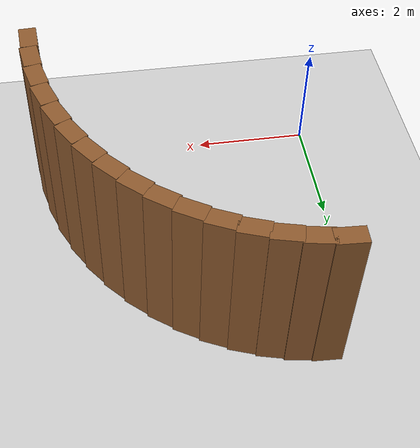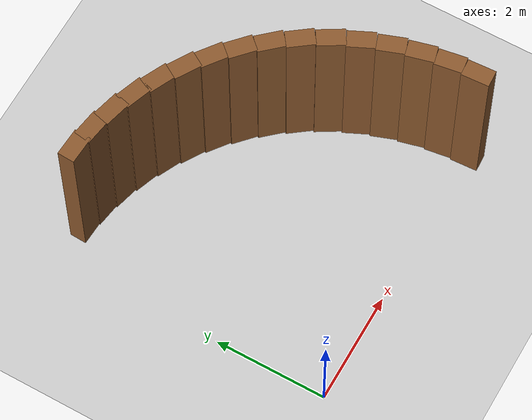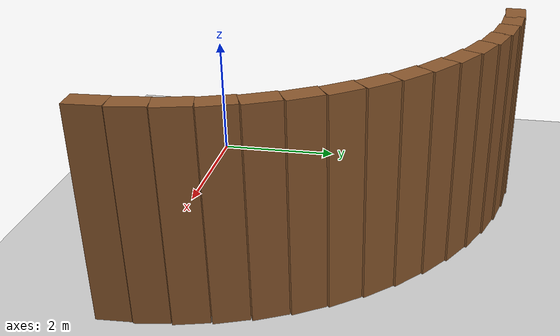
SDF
<?xml version="1.0" encoding="UTF-8"?>
<sdf version="1.9">
  <world name="pg_curved">
    <!-- Physics + environment copied from default.sdf for consistency -->
    <physics type="ode">
      <max_step_size>0.004</max_step_size>
      <real_time_factor>1.0</real_time_factor>
      <real_time_update_rate>250</real_time_update_rate>
    </physics>
    <gravity>0 0 -9.8</gravity>
    <magnetic_field>6e-06 2.3e-05 -4.2e-05</magnetic_field>
    <atmosphere type="adiabatic"/>
    <scene>
      <grid>false</grid>
      <ambient>0.4 0.4 0.4 1</ambient>
      <background>0.7 0.7 0.7 1</background>
      <shadows>true</shadows>
    </scene>

    <model name="ground_plane">
      <static>true</static>
      <link name="link">
        <collision name="collision">
          <geometry>
            <plane>
              <normal>0 0 1</normal>
              <size>1 1</size>
            </plane>
          </geometry>
          <surface>
            <friction>
              <ode/>
            </friction>
            <bounce/>
            <contact/>
          </surface>
        </collision>
        <visual name="visual">
          <geometry>
            <plane>
              <normal>0 0 1</normal>
              <size>500 500</size>
            </plane>
          </geometry>
          <material>
            <ambient>0.8 0.8 0.8 1</ambient>
            <diffuse>0.8 0.8 0.8 1</diffuse>
            <specular>0.8 0.8 0.8 1</specular>
          </material>
        </visual>
        <pose>0 0 0 0 -0 0</pose>
        <inertial>
          <pose>0 0 0 0 -0 0</pose>
          <mass>1</mass>
          <inertia>
            <ixx>1</ixx>
            <ixy>0</ixy>
            <ixz>0</ixz>
            <iyy>1</iyy>
            <iyz>0</iyz>
            <izz>1</izz>
          </inertia>
        </inertial>
        <enable_wind>false</enable_wind>
      </link>
      <pose>0 0 0 0 -0 0</pose>
      <self_collide>false</self_collide>
    </model>

    <light name="sunUTC" type="directional">
      <pose>0 0 500 0 -0 0</pose>
      <cast_shadows>true</cast_shadows>
      <intensity>1</intensity>
      <direction>0.001 0.625 -0.78</direction>
      <diffuse>0.904 0.904 0.904 1</diffuse>
      <specular>0.271 0.271 0.271 1</specular>
      <attenuation>
        <range>2000</range>
        <linear>0</linear>
        <constant>1</constant>
        <quadratic>0</quadratic>
      </attenuation>
      <spot>
        <inner_angle>0</inner_angle>
        <outer_angle>0</outer_angle>
        <falloff>0</falloff>
      </spot>
    </light>
    <spherical_coordinates>
      <surface_model>EARTH_WGS84</surface_model>
      <world_frame_orientation>ENU</world_frame_orientation>
      <latitude_deg>47.397971057728974</latitude_deg>
      <longitude_deg> 8.546163739800146</longitude_deg>
      <elevation>0</elevation>
    </spherical_coordinates>

    <!-- Quarter-circle curved wall constructed from multiple narrow box segments -->

    <!-- Generated segments -->
    <!-- You can adjust segment count for smoothness: more segments => smoother curve -->
    <!-- Computation (for reference): angle_step = (pi/2)/16 = 0.09817477 rad (~5.625 deg) -->

    <!-- We'll name models wall_seg_0..wall_seg_15 -->

    <!-- NOTE: For simplicity all segments share same size in Y approximating local tangent length.
         A more precise approach would compute the chord length for each segment: 2*R*tan(angle_step/2) -->

    <!-- Using chord length L = 2 * 5 * tan(0.09817477/2) ≈ 0.4907 m -->

    <!-- Material: same brown as previous walls -->

    <!-- Start of segments -->

    <!-- Segment definitions -->
    <!-- Precomputed values (rounded to 4 decimal places) -->
    <!-- thickness=0.3, length=0.491, height=3, center z = 1.5 -->

    <model name="wall_seg_0">
      <static>true</static>
      <pose>5.0000 0.0000 1.5 0 0 0.0491</pose>
      <link name="link">
        <collision name="collision">
          <geometry><box><size>0.3 0.491 3</size></box></geometry>
        </collision>
        <visual name="visual">
          <geometry><box><size>0.3 0.491 3</size></box></geometry>
          <material>
            <ambient>0.25 0.15 0.08 1</ambient>
            <diffuse>0.55 0.35 0.18 1</diffuse>
            <specular>0.1 0.08 0.05 1</specular>
          </material>
        </visual>
      </link>
    </model>

    <model name="wall_seg_1">
      <static>true</static>
      <pose>4.9759 0.4910 1.5 0 0 0.1473</pose>
      <link name="link">
        <collision name="collision">
          <geometry><box><size>0.3 0.491 3</size></box></geometry>
        </collision>
        <visual name="visual">
          <geometry><box><size>0.3 0.491 3</size></box></geometry>
          <material>
            <ambient>0.25 0.15 0.08 1</ambient>
            <diffuse>0.55 0.35 0.18 1</diffuse>
            <specular>0.1 0.08 0.05 1</specular>
          </material>
        </visual>
      </link>
    </model>

    <model name="wall_seg_2">
      <static>true</static>
      <pose>4.9045 0.9774 1.5 0 0 0.2454</pose>
      <link name="link">
        <collision name="collision">
          <geometry><box><size>0.3 0.491 3</size></box></geometry>
        </collision>
        <visual name="visual">
          <geometry><box><size>0.3 0.491 3</size></box></geometry>
          <material>
            <ambient>0.25 0.15 0.08 1</ambient>
            <diffuse>0.55 0.35 0.18 1</diffuse>
            <specular>0.1 0.08 0.05 1</specular>
          </material>
        </visual>
      </link>
    </model>

    <model name="wall_seg_3">
      <static>true</static>
      <pose>4.7861 1.4549 1.5 0 0 0.3436</pose>
      <link name="link">
        <collision name="collision">
          <geometry><box><size>0.3 0.491 3</size></box></geometry>
        </collision>
        <visual name="visual">
          <geometry><box><size>0.3 0.491 3</size></box></geometry>
          <material>
            <ambient>0.25 0.15 0.08 1</ambient>
            <diffuse>0.55 0.35 0.18 1</diffuse>
            <specular>0.1 0.08 0.05 1</specular>
          </material>
        </visual>
      </link>
    </model>

    <model name="wall_seg_4">
      <static>true</static>
      <pose>4.6222 1.9190 1.5 0 0 0.4418</pose>
      <link name="link">
        <collision name="collision">
          <geometry><box><size>0.3 0.491 3</size></box></geometry>
        </collision>
        <visual name="visual">
          <geometry><box><size>0.3 0.491 3</size></box></geometry>
          <material>
            <ambient>0.25 0.15 0.08 1</ambient>
            <diffuse>0.55 0.35 0.18 1</diffuse>
            <specular>0.1 0.08 0.05 1</specular>
          </material>
        </visual>
      </link>
    </model>

    <model name="wall_seg_5">
      <static>true</static>
      <pose>4.4147 2.3650 1.5 0 0 0.5400</pose>
      <link name="link">
        <collision name="collision">
          <geometry><box><size>0.3 0.491 3</size></box></geometry>
        </collision>
        <visual name="visual">
          <geometry><box><size>0.3 0.491 3</size></box></geometry>
          <material>
            <ambient>0.25 0.15 0.08 1</ambient>
            <diffuse>0.55 0.35 0.18 1</diffuse>
            <specular>0.1 0.08 0.05 1</specular>
          </material>
        </visual>
      </link>
    </model>

    <model name="wall_seg_6">
      <static>true</static>
      <pose>4.1651 2.7876 1.5 0 0 0.6382</pose>
      <link name="link">
        <collision name="collision">
          <geometry><box><size>0.3 0.491 3</size></box></geometry>
        </collision>
        <visual name="visual">
          <geometry><box><size>0.3 0.491 3</size></box></geometry>
          <material>
            <ambient>0.25 0.15 0.08 1</ambient>
            <diffuse>0.55 0.35 0.18 1</diffuse>
            <specular>0.1 0.08 0.05 1</specular>
          </material>
        </visual>
      </link>
    </model>

    <model name="wall_seg_7">
      <static>true</static>
      <pose>3.8769 3.1824 1.5 0 0 0.7364</pose>
      <link name="link">
        <collision name="collision">
          <geometry><box><size>0.3 0.491 3</size></box></geometry>
        </collision>
        <visual name="visual">
          <geometry><box><size>0.3 0.491 3</size></box></geometry>
          <material>
            <ambient>0.25 0.15 0.08 1</ambient>
            <diffuse>0.55 0.35 0.18 1</diffuse>
            <specular>0.1 0.08 0.05 1</specular>
          </material>
        </visual>
      </link>
    </model>

    <model name="wall_seg_8">
      <static>true</static>
      <pose>3.5537 3.5456 1.5 0 0 0.8346</pose>
      <link name="link">
        <collision name="collision">
          <geometry><box><size>0.3 0.491 3</size></box></geometry>
        </collision>
        <visual name="visual">
          <geometry><box><size>0.3 0.491 3</size></box></geometry>
          <material>
            <ambient>0.25 0.15 0.08 1</ambient>
            <diffuse>0.55 0.35 0.18 1</diffuse>
            <specular>0.1 0.08 0.05 1</specular>
          </material>
        </visual>
      </link>
    </model>

    <model name="wall_seg_9">
      <static>true</static>
      <pose>3.2000 3.8730 1.5 0 0 0.9327</pose>
      <link name="link">
        <collision name="collision">
          <geometry><box><size>0.3 0.491 3</size></box></geometry>
        </collision>
        <visual name="visual">
          <geometry><box><size>0.3 0.491 3</size></box></geometry>
          <material>
            <ambient>0.25 0.15 0.08 1</ambient>
            <diffuse>0.55 0.35 0.18 1</diffuse>
            <specular>0.1 0.08 0.05 1</specular>
          </material>
        </visual>
      </link>
    </model>

    <model name="wall_seg_10">
      <static>true</static>
      <pose>2.8203 4.1616 1.5 0 0 1.0310</pose>
      <link name="link">
        <collision name="collision">
          <geometry><box><size>0.3 0.491 3</size></box></geometry>
        </collision>
        <visual name="visual">
          <geometry><box><size>0.3 0.491 3</size></box></geometry>
          <material>
            <ambient>0.25 0.15 0.08 1</ambient>
            <diffuse>0.55 0.35 0.18 1</diffuse>
            <specular>0.1 0.08 0.05 1</specular>
          </material>
        </visual>
      </link>
    </model>

    <model name="wall_seg_11">
      <static>true</static>
      <pose>2.4197 4.4083 1.5 0 0 1.1291</pose>
      <link name="link">
        <collision name="collision">
          <geometry><box><size>0.3 0.491 3</size></box></geometry>
        </collision>
        <visual name="visual">
          <geometry><box><size>0.3 0.491 3</size></box></geometry>
          <material>
            <ambient>0.25 0.15 0.08 1</ambient>
            <diffuse>0.55 0.35 0.18 1</diffuse>
            <specular>0.1 0.08 0.05 1</specular>
          </material>
        </visual>
      </link>
    </model>

    <model name="wall_seg_12">
      <static>true</static>
      <pose>2.0038 4.6107 1.5 0 0 1.2273</pose>
      <link name="link">
        <collision name="collision">
          <geometry><box><size>0.3 0.491 3</size></box></geometry>
        </collision>
        <visual name="visual">
          <geometry><box><size>0.3 0.491 3</size></box></geometry>
          <material>
            <ambient>0.25 0.15 0.08 1</ambient>
            <diffuse>0.55 0.35 0.18 1</diffuse>
            <specular>0.1 0.08 0.05 1</specular>
          </material>
        </visual>
      </link>
    </model>

    <model name="wall_seg_13">
      <static>true</static>
      <pose>1.5783 4.7668 1.5 0 0 1.3255</pose>
      <link name="link">
        <collision name="collision">
          <geometry><box><size>0.3 0.491 3</size></box></geometry>
        </collision>
        <visual name="visual">
          <geometry><box><size>0.3 0.491 3</size></box></geometry>
          <material>
            <ambient>0.25 0.15 0.08 1</ambient>
            <diffuse>0.55 0.35 0.18 1</diffuse>
            <specular>0.1 0.08 0.05 1</specular>
          </material>
        </visual>
      </link>
    </model>

    <model name="wall_seg_14">
      <static>true</static>
      <pose>1.1503 4.8756 1.5 0 0 1.4237</pose>
      <link name="link">
        <collision name="collision">
          <geometry><box><size>0.3 0.491 3</size></box></geometry>
        </collision>
        <visual name="visual">
          <geometry><box><size>0.3 0.491 3</size></box></geometry>
          <material>
            <ambient>0.25 0.15 0.08 1</ambient>
            <diffuse>0.55 0.35 0.18 1</diffuse>
            <specular>0.1 0.08 0.05 1</specular>
          </material>
        </visual>
      </link>
    </model>

    <model name="wall_seg_15">
      <static>true</static>
      <pose>0.7256 4.9378 1.5 0 0 1.5220</pose>
      <link name="link">
        <collision name="collision">
          <geometry><box><size>0.3 0.491 3</size></box></geometry>
        </collision>
        <visual name="visual">
          <geometry><box><size>0.3 0.491 3</size></box></geometry>
          <material>
            <ambient>0.25 0.15 0.08 1</ambient>
            <diffuse>0.55 0.35 0.18 1</diffuse>
            <specular>0.1 0.08 0.05 1</specular>
          </material>
        </visual>
      </link>
    </model>

  </world>
</sdf>
